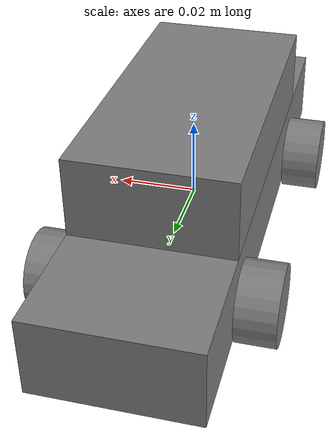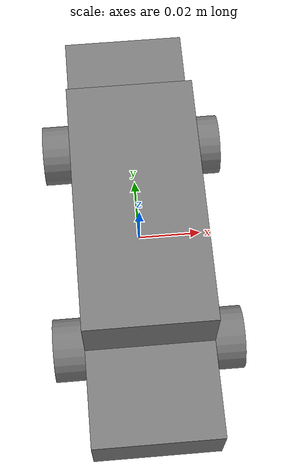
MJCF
<mujoco>
  <compiler meshdir="assets/meshes" texturedir="assets/textures" autolimits="true"/>

  <asset>

  </asset>

  <default>

        <!-- ToyCar -->
        <default class="ToyCar_wheel">
          <geom   type="cylinder" size="0.01 0.005" euler="0 90 0"/>
          <joint  axis="0 1 0" />
        </default>

  </default>

  <worldbody>

          <body pos="0 0 0" euler="0 0 0">
            <geom   type="box" size="0.02 0.04 0.01" pos="0 0 0.02" />
            <geom   type="box" size="0.02 0.07 0.01" />

          <body>
            <joint class="ToyCar_wheel" />
            <geom class="ToyCar_wheel"  pos="-0.025 -0.035 -0.005"/>
          </body>

          <body>
            <joint class="ToyCar_wheel" />
            <geom class="ToyCar_wheel"  pos="0.025 -0.035 -0.005"/>
          </body>

          <body>
            <joint class="ToyCar_wheel" />
            <geom class="ToyCar_wheel"  pos="-0.025 0.035 -0.005"/>
          </body>

          <body>
            <joint class="ToyCar_wheel" />
            <geom class="ToyCar_wheel"  pos="0.025 0.035 -0.005"/>
          </body>

          </body>

  </worldbody>

</mujoco>
